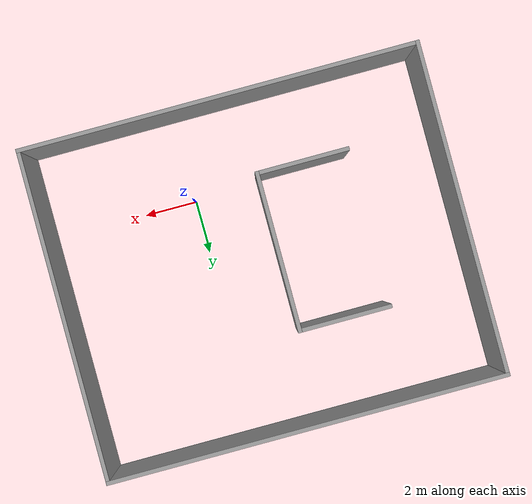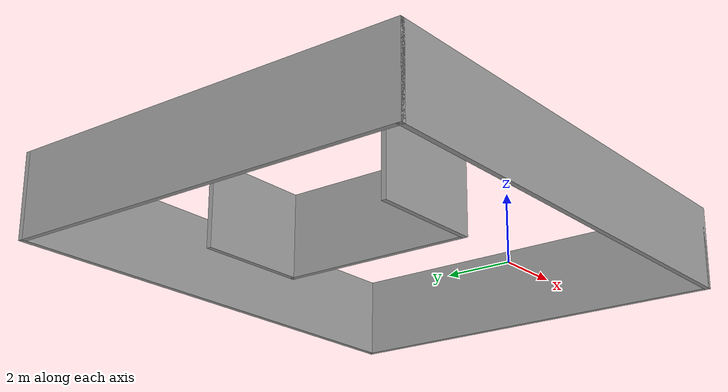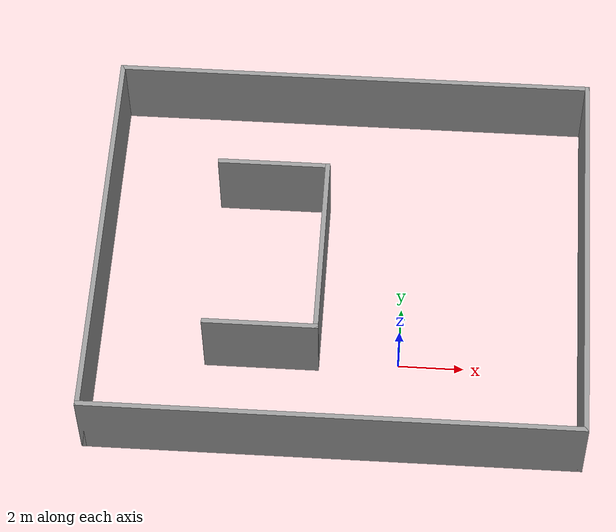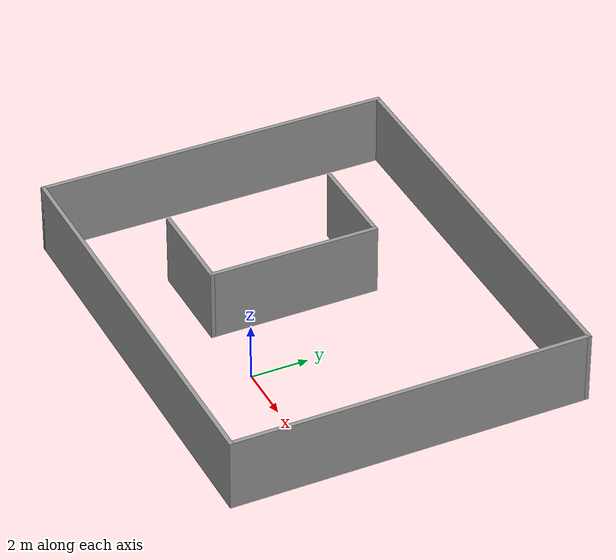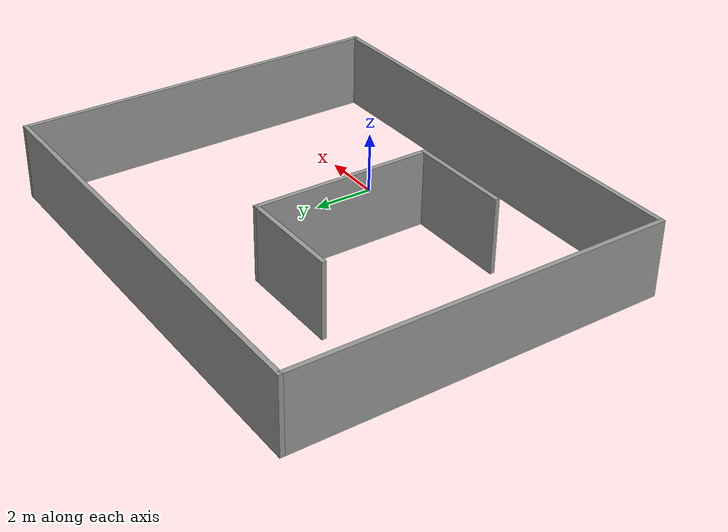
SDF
<?xml version='1.0'?>
<sdf version='1.6'>
  <model name='localmin'>
    <pose frame=''>-1.86378 2.9304 0 0 -0 0</pose>
    <link name='Wall_10'>
      <collision name='Wall_10_Collision'>
        <geometry>
          <box>
            <size>15 0.15 2.5</size>
          </box>
        </geometry>
        <pose frame=''>0 0 1.25 0 -0 0</pose>
      </collision>
      <visual name='Wall_10_Visual'>
        <pose frame=''>0 0 1.25 0 -0 0</pose>
        <geometry>
          <box>
            <size>15 0.15 2.5</size>
          </box>
        </geometry>
        <material>
          <script>
            <uri>file://media/materials/scripts/gazebo.material</uri>
            <name>Gazebo/Grey</name>
          </script>
          <ambient>1 1 1 1</ambient>
        </material>
        <meta>
          <layer>0</layer>
        </meta>
      </visual>
      <pose frame=''>0 6.175 0 0 -0 3.14159</pose>
    </link>
    <link name='Wall_14'>
      <collision name='Wall_14_Collision'>
        <geometry>
          <box>
            <size>6 0.15 2.5</size>
          </box>
        </geometry>
        <pose frame=''>0 0 1.25 0 -0 0</pose>
      </collision>
      <visual name='Wall_14_Visual'>
        <pose frame=''>0 0 1.25 0 -0 0</pose>
        <geometry>
          <box>
            <size>6 0.15 2.5</size>
          </box>
        </geometry>
        <material>
          <script>
            <uri>file://media/materials/scripts/gazebo.material</uri>
            <name>Gazebo/Grey</name>
          </script>
          <ambient>1 1 1 1</ambient>
        </material>
        <meta>
          <layer>0</layer>
        </meta>
      </visual>
      <pose frame=''>-0.640168 -0.222451 0 0 -0 -1.5708</pose>
    </link>
    <link name='Wall_15'>
      <collision name='Wall_15_Collision'>
        <geometry>
          <box>
            <size>3.5 0.15 2.5</size>
          </box>
        </geometry>
        <pose frame=''>0 0 1.25 0 -0 0</pose>
      </collision>
      <visual name='Wall_15_Visual'>
        <pose frame=''>0 0 1.25 0 -0 0</pose>
        <geometry>
          <box>
            <size>3.5 0.15 2.5</size>
          </box>
        </geometry>
        <material>
          <script>
            <uri>file://media/materials/scripts/gazebo.material</uri>
            <name>Gazebo/Grey</name>
          </script>
          <ambient>1 1 1 1</ambient>
        </material>
        <meta>
          <layer>0</layer>
        </meta>
      </visual>
      <pose frame=''>-2.31517 -3.14745 0 0 -0 3.14159</pose>
    </link>
    <link name='Wall_17'>
      <collision name='Wall_17_Collision'>
        <geometry>
          <box>
            <size>3.5 0.15 2.5</size>
          </box>
        </geometry>
        <pose frame=''>0 0 1.25 0 -0 0</pose>
      </collision>
      <visual name='Wall_17_Visual'>
        <pose frame=''>0 0 1.25 0 -0 0</pose>
        <geometry>
          <box>
            <size>3.5 0.15 2.5</size>
          </box>
        </geometry>
        <material>
          <script>
            <uri>file://media/materials/scripts/gazebo.material</uri>
            <name>Gazebo/Grey</name>
          </script>
          <ambient>1 1 1 1</ambient>
        </material>
        <meta>
          <layer>0</layer>
        </meta>
      </visual>
      <pose frame=''>-2.31517 2.70255 0 0 -0 3.14159</pose>
    </link>
    <link name='Wall_7'>
      <collision name='Wall_7_Collision'>
        <geometry>
          <box>
            <size>12.5 0.15 2.5</size>
          </box>
        </geometry>
        <pose frame=''>0 0 1.25 0 -0 0</pose>
      </collision>
      <visual name='Wall_7_Visual'>
        <pose frame=''>0 0 1.25 0 -0 0</pose>
        <geometry>
          <box>
            <size>12.5 0.15 2.5</size>
          </box>
        </geometry>
        <material>
          <script>
            <uri>file://media/materials/scripts/gazebo.material</uri>
            <name>Gazebo/Grey</name>
          </script>
          <ambient>1 1 1 1</ambient>
        </material>
        <meta>
          <layer>0</layer>
        </meta>
      </visual>
      <pose frame=''>-7.425 0 0 0 -0 -1.5708</pose>
    </link>
    <link name='Wall_8'>
      <collision name='Wall_8_Collision'>
        <geometry>
          <box>
            <size>15 0.15 2.5</size>
          </box>
        </geometry>
        <pose frame=''>0 0 1.25 0 -0 0</pose>
      </collision>
      <visual name='Wall_8_Visual'>
        <pose frame=''>0 0 1.25 0 -0 0</pose>
        <geometry>
          <box>
            <size>15 0.15 2.5</size>
          </box>
        </geometry>
        <material>
          <script>
            <uri>file://media/materials/scripts/gazebo.material</uri>
            <name>Gazebo/Grey</name>
          </script>
          <ambient>1 1 1 1</ambient>
        </material>
        <meta>
          <layer>0</layer>
        </meta>
      </visual>
      <pose frame=''>0 -6.175 0 0 -0 0</pose>
    </link>
    <link name='Wall_9'>
      <collision name='Wall_9_Collision'>
        <geometry>
          <box>
            <size>12.5 0.15 2.5</size>
          </box>
        </geometry>
        <pose frame=''>0 0 1.25 0 -0 0</pose>
      </collision>
      <visual name='Wall_9_Visual'>
        <pose frame=''>0 0 1.25 0 -0 0</pose>
        <geometry>
          <box>
            <size>12.5 0.15 2.5</size>
          </box>
        </geometry>
        <material>
          <script>
            <uri>file://media/materials/scripts/gazebo.material</uri>
            <name>Gazebo/Grey</name>
          </script>
          <ambient>1 1 1 1</ambient>
        </material>
        <meta>
          <layer>0</layer>
        </meta>
      </visual>
      <pose frame=''>7.425 0 0 0 -0 1.5708</pose>
    </link>
    <static>1</static>
  </model>
</sdf>
